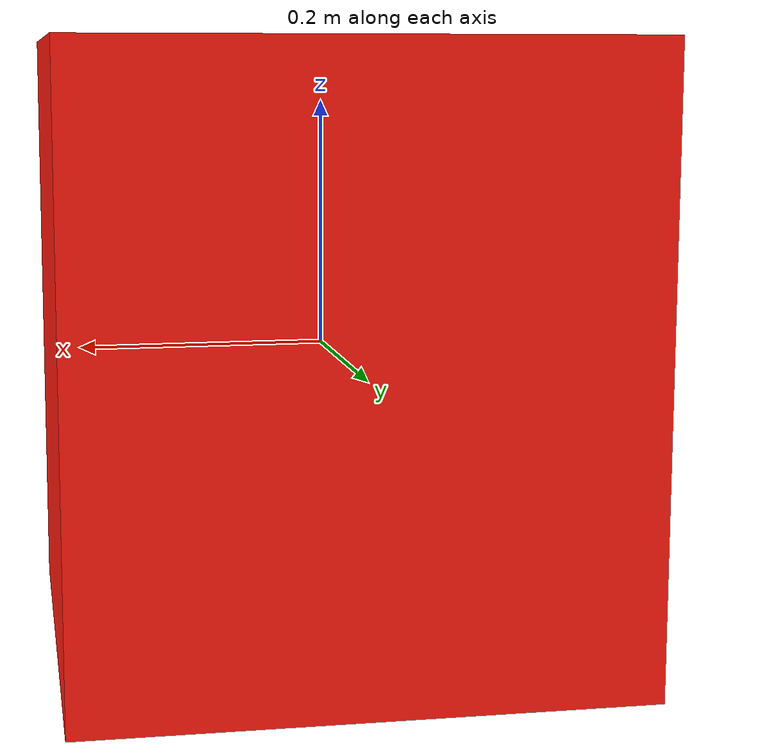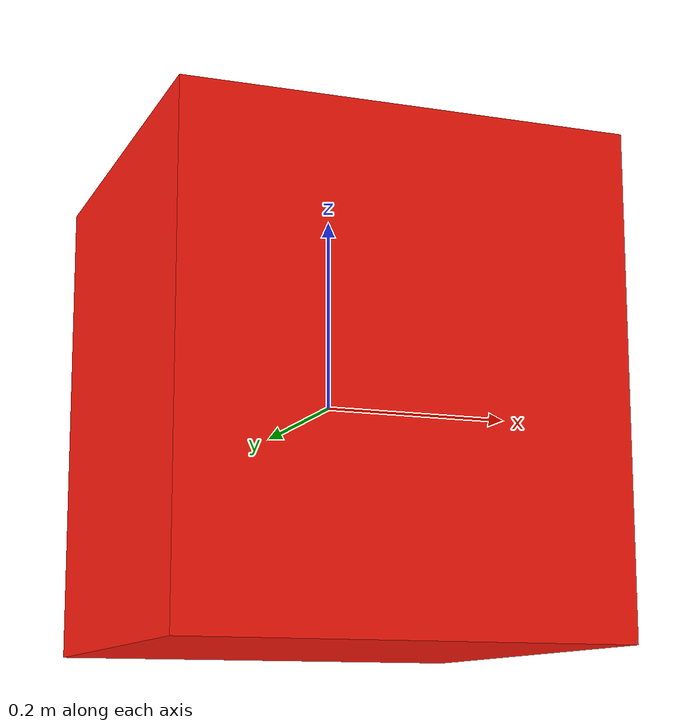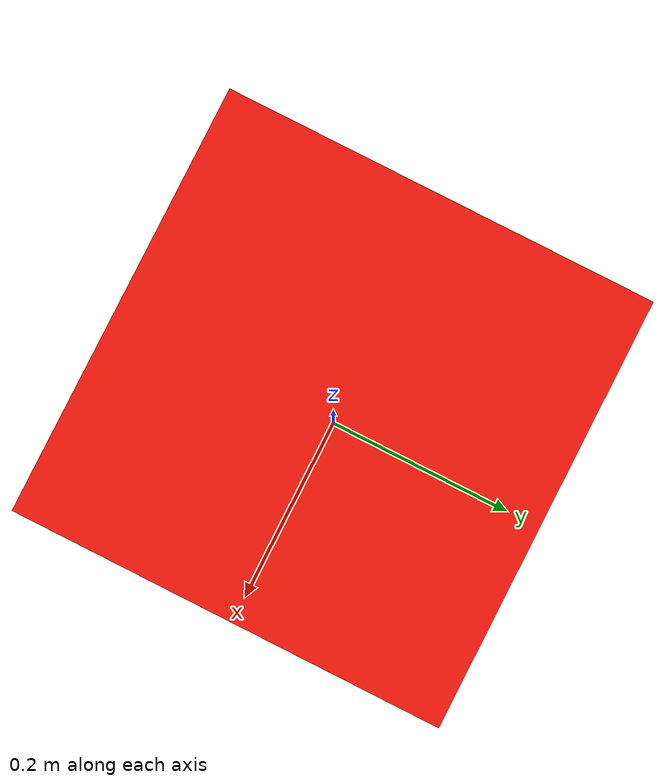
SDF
<?xml version="1.0"?>
<sdf version="1.9">
  <model name="small_box_obstacle">
    <static>true</static>
    <link name="body">
      <collision name="collision">
        <geometry>
          <box>
            <size>0.45 0.45 0.5</size>
          </box>
        </geometry>
      </collision>
      <visual name="visual">
        <geometry>
          <box>
            <size>0.45 0.45 0.5</size>
          </box>
        </geometry>
        <material>
          <diffuse>1.0 0.1 0.05 1.0</diffuse>
          <ambient>0.8 0.08 0.04 1.0</ambient>
        </material>
      </visual>
    </link>
  </model>
</sdf>
